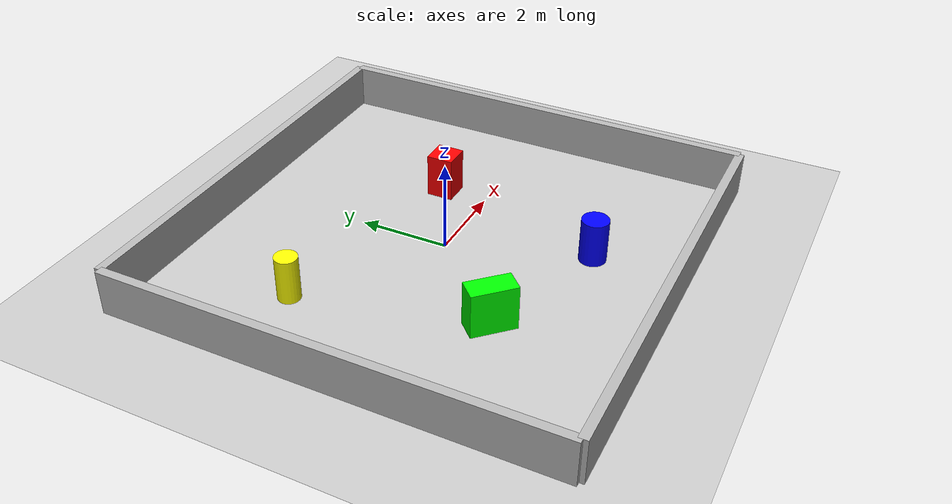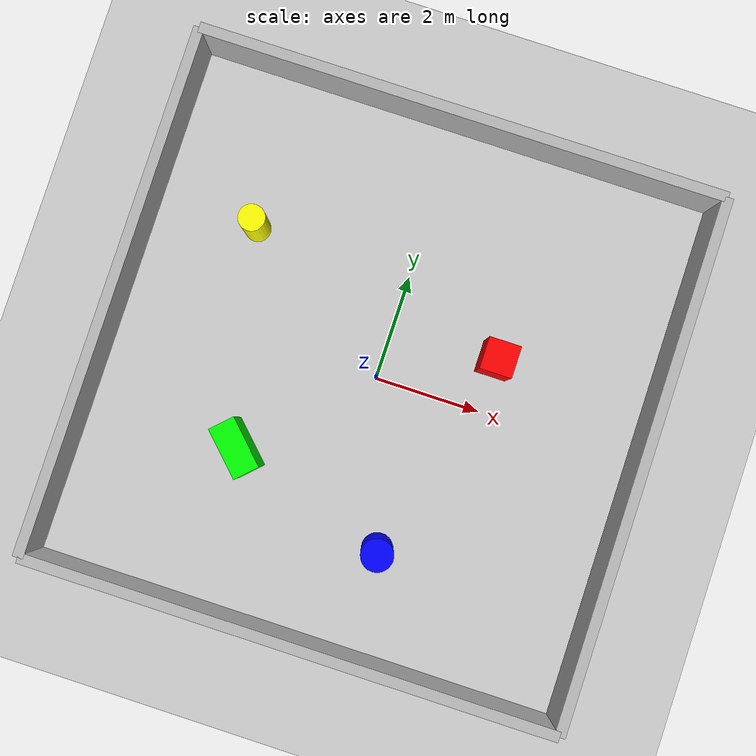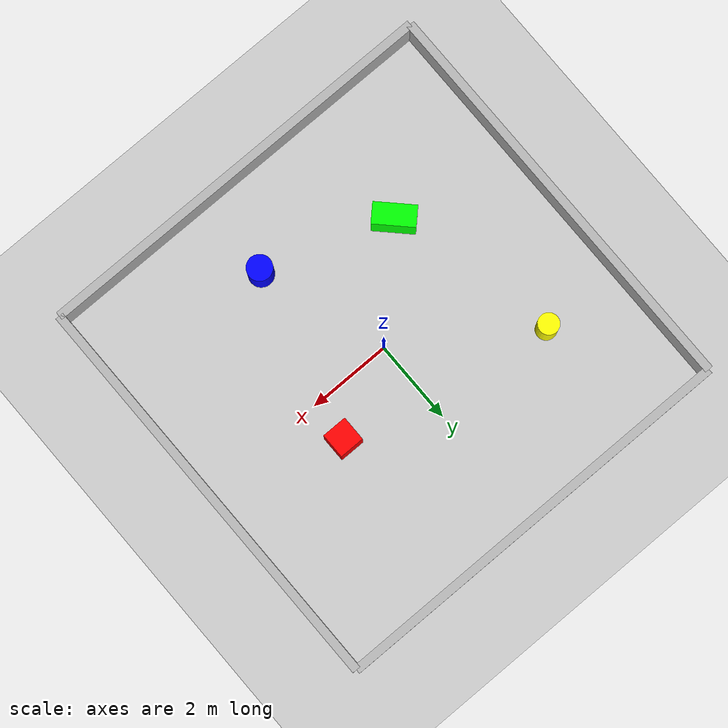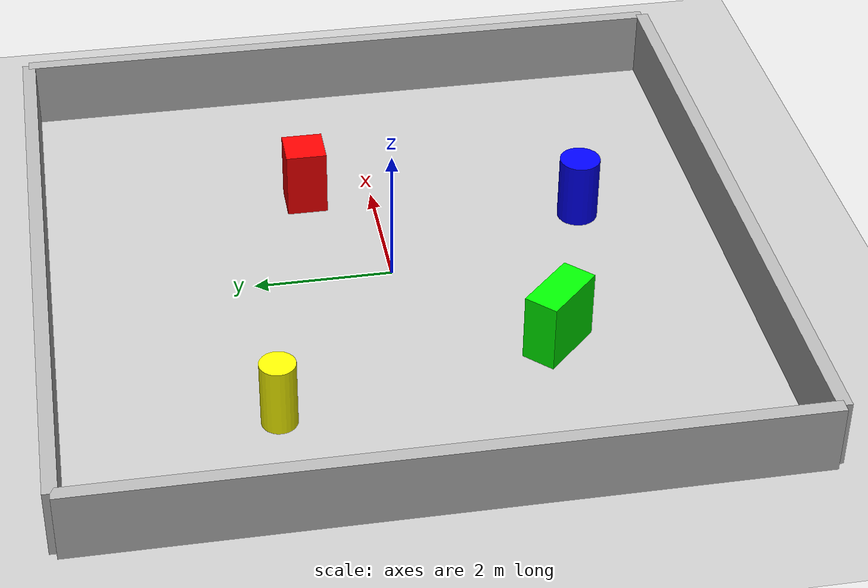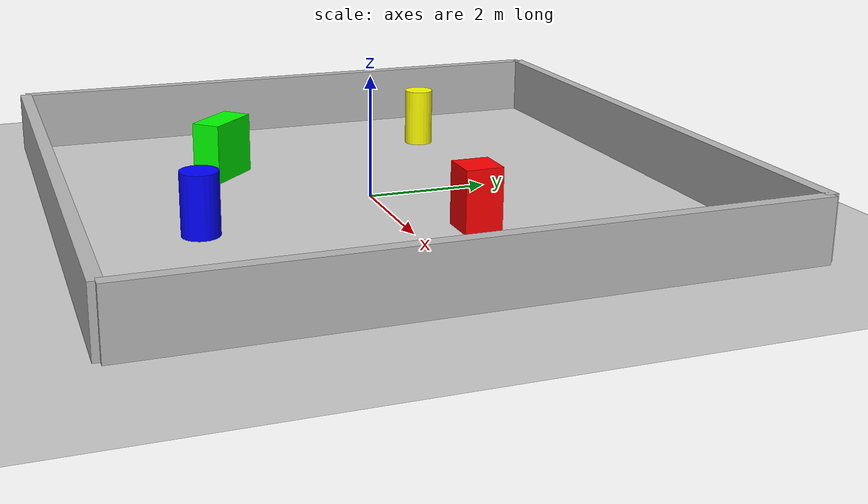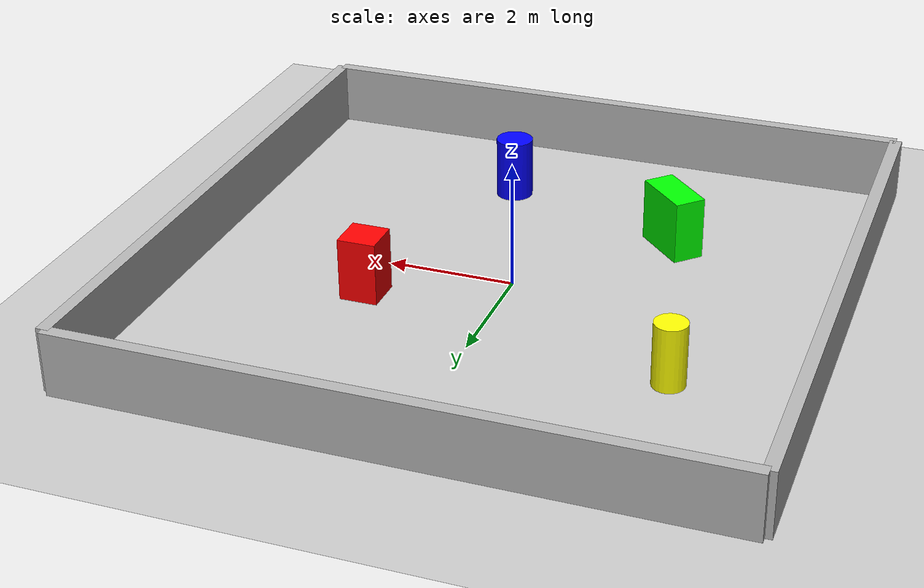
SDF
<?xml version="1.0"?>
<sdf version="1.6">
  <world name="obstacle_world">

    <include><uri>model://ground_plane</uri></include>
    <include><uri>model://sun</uri></include>

    <!-- Outer boundary walls -->
    <model name="wall_north">
      <static>true</static>
      <pose>0 5 0.5 0 0 0</pose>
      <link name="link">
        <collision name="col"><geometry><box><size>10 0.2 1</size></box></geometry></collision>
        <visual name="vis"><geometry><box><size>10 0.2 1</size></box></geometry></visual>
      </link>
    </model>

    <model name="wall_south">
      <static>true</static>
      <pose>0 -5 0.5 0 0 0</pose>
      <link name="link">
        <collision name="col"><geometry><box><size>10 0.2 1</size></box></geometry></collision>
        <visual name="vis"><geometry><box><size>10 0.2 1</size></box></geometry></visual>
      </link>
    </model>

    <model name="wall_east">
      <static>true</static>
      <pose>5 0 0.5 0 0 1.5708</pose>
      <link name="link">
        <collision name="col"><geometry><box><size>10 0.2 1</size></box></geometry></collision>
        <visual name="vis"><geometry><box><size>10 0.2 1</size></box></geometry></visual>
      </link>
    </model>

    <model name="wall_west">
      <static>true</static>
      <pose>-5 0 0.5 0 0 1.5708</pose>
      <link name="link">
        <collision name="col"><geometry><box><size>10 0.2 1</size></box></geometry></collision>
        <visual name="vis"><geometry><box><size>10 0.2 1</size></box></geometry></visual>
      </link>
    </model>

    <!-- Internal obstacles -->
    <model name="box1">
      <static>true</static>
      <pose>2 1 0.5 0 0 0</pose>
      <link name="link">
        <collision name="col"><geometry><box><size>0.6 0.6 1</size></box></geometry></collision>
        <visual name="vis"><geometry><box><size>0.6 0.6 1</size></box></geometry>
          <material><ambient>1 0 0 1</ambient></material>
        </visual>
      </link>
    </model>

    <model name="box2">
      <static>true</static>
      <pose>-2 -2 0.5 0 0 0.785</pose>
      <link name="link">
        <collision name="col"><geometry><box><size>0.5 1.0 1</size></box></geometry></collision>
        <visual name="vis"><geometry><box><size>0.5 1.0 1</size></box></geometry>
          <material><ambient>0 1 0 1</ambient></material>
        </visual>
      </link>
    </model>

    <model name="cylinder1">
      <static>true</static>
      <pose>1 -3 0.5 0 0 0</pose>
      <link name="link">
        <collision name="col"><geometry><cylinder><radius>0.3</radius><length>1</length></cylinder></geometry></collision>
        <visual name="vis"><geometry><cylinder><radius>0.3</radius><length>1</length></cylinder></geometry>
          <material><ambient>0 0 1 1</ambient></material>
        </visual>
      </link>
    </model>

    <model name="cylinder2">
      <static>true</static>
      <pose>-3 2 0.5 0 0 0</pose>
      <link name="link">
        <collision name="col"><geometry><cylinder><radius>0.25</radius><length>1</length></cylinder></geometry></collision>
        <visual name="vis"><geometry><cylinder><radius>0.25</radius><length>1</length></cylinder></geometry>
          <material><ambient>1 1 0 1</ambient></material>
        </visual>
      </link>
    </model>

  </world>
</sdf>
